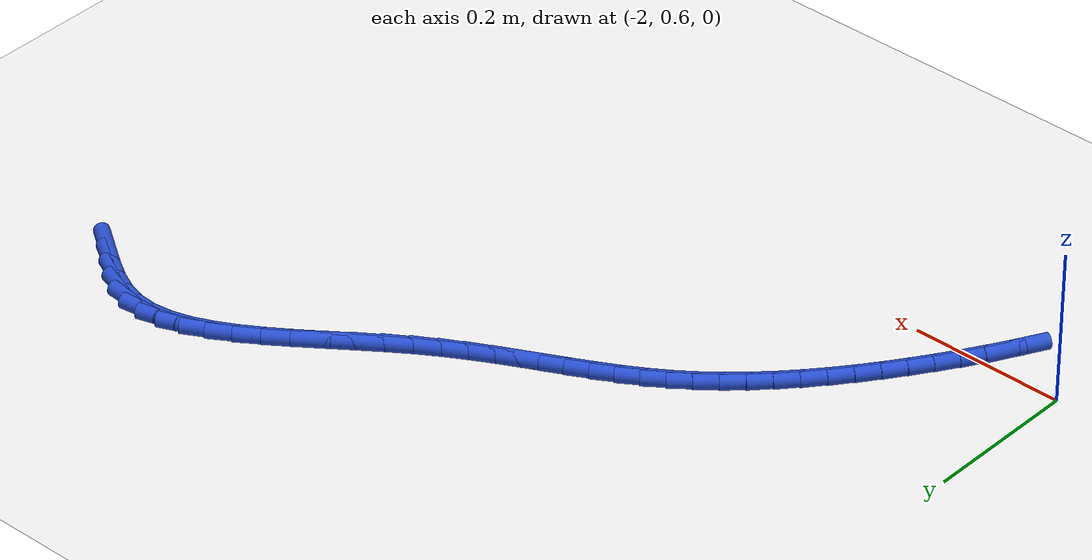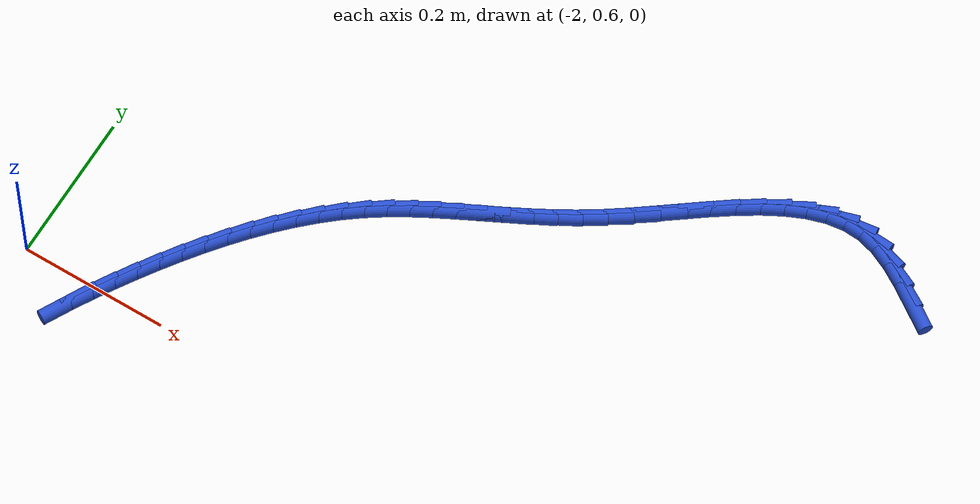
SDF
<sdf version="1.6">
 <world name="default">
  <model name="ground_plane">
   <static>1</static>
   <link name="link">
    <collision name="collision">
     <geometry><plane><normal>0 0 1</normal><size>100 100</size></plane></geometry>
     <surface><friction><ode><mu>100</mu><mu2>50</mu2></ode></friction></surface>
    </collision>
    <visual name="visual">
     <cast_shadows>0</cast_shadows>
     <geometry><plane><normal>0 0 1</normal><size>100 100</size></plane></geometry>
     <material>
      <script><uri>file://media/materials/scripts/gazebo.material</uri><name>Gazebo/WhiteGlow</name></script>
     </material>
    </visual>
   </link>
  </model>
  <model name="line">
   <link name="link_56">
    <pose>-1.0130125611857852 1.112921044099273 0.01 0 1.57 -0.6026807748835207</pose>
    <collision name="collision">
     <geometry><cylinder><radius>0.01</radius><length>0.08</length></cylinder></geometry>
    </collision>
    <visual name="visual">
     <material>
      <script><name>Gazebo/Blue</name><uri>file://media/materials/scripts/gazebo.material</uri></script>
     </material>
     <geometry><cylinder><radius>0.01</radius><length>0.08</length></cylinder></geometry>
    </visual>
   </link>
   <link name="link_57">
    <pose>-1.0380992990746158 1.1301827152183828 0.01 0 1.57 -0.5471766713011936</pose>
    <collision name="collision">
     <geometry><cylinder><radius>0.01</radius><length>0.08</length></cylinder></geometry>
    </collision>
    <visual name="visual">
     <material>
      <script><name>Gazebo/Blue</name><uri>file://media/materials/scripts/gazebo.material</uri></script>
     </material>
     <geometry><cylinder><radius>0.01</radius><length>0.08</length></cylinder></geometry>
    </visual>
   </link>
   <link name="link_58">
    <pose>-1.0628322930245138 1.1452507304255004 0.01 0 1.57 -0.4424146933022829</pose>
    <collision name="collision">
     <geometry><cylinder><radius>0.01</radius><length>0.08</length></cylinder></geometry>
    </collision>
    <visual name="visual">
     <material>
      <script><name>Gazebo/Blue</name><uri>file://media/materials/scripts/gazebo.material</uri></script>
     </material>
     <geometry><cylinder><radius>0.01</radius><length>0.08</length></cylinder></geometry>
    </visual>
   </link>
   <link name="link_59">
    <pose>-1.0874749070498286 1.1569247686831123 0.01 0 1.57 -0.277911214962415</pose>
    <collision name="collision">
     <geometry><cylinder><radius>0.01</radius><length>0.08</length></cylinder></geometry>
    </collision>
    <visual name="visual">
     <material>
      <script><name>Gazebo/Blue</name><uri>file://media/materials/scripts/gazebo.material</uri></script>
     </material>
     <geometry><cylinder><radius>0.01</radius><length>0.08</length></cylinder></geometry>
    </visual>
   </link>
   <link name="link_60">
    <pose>-1.1122905043282565 1.1640045141240842 0.01 0 1.57 -0.06423694749596144</pose>
    <collision name="collision">
     <geometry><cylinder><radius>0.01</radius><length>0.08</length></cylinder></geometry>
    </collision>
    <visual name="visual">
     <material>
      <script><name>Gazebo/Blue</name><uri>file://media/materials/scripts/gazebo.material</uri></script>
     </material>
     <geometry><cylinder><radius>0.01</radius><length>0.08</length></cylinder></geometry>
    </visual>
   </link>
   <link name="link_61">
    <pose>-1.1374881243011514 1.1656253623436648 0.01 0 1.57 0.13435719527198273</pose>
    <collision name="collision">
     <geometry><cylinder><radius>0.01</radius><length>0.08</length></cylinder></geometry>
    </collision>
    <visual name="visual">
     <material>
      <script><name>Gazebo/Blue</name><uri>file://media/materials/scripts/gazebo.material</uri></script>
     </material>
     <geometry><cylinder><radius>0.01</radius><length>0.08</length></cylinder></geometry>
    </visual>
   </link>
   <link name="link_62">
    <pose>-1.1630755117503349 1.162166675738191 0.01 0 1.57 0.29461252777238905</pose>
    <collision name="collision">
     <geometry><cylinder><radius>0.01</radius><length>0.08</length></cylinder></geometry>
    </collision>
    <visual name="visual">
     <material>
      <script><name>Gazebo/Blue</name><uri>file://media/materials/scripts/gazebo.material</uri></script>
     </material>
     <geometry><cylinder><radius>0.01</radius><length>0.08</length></cylinder></geometry>
    </visual>
   </link>
   <link name="link_63">
    <pose>-1.1890137973425283 1.1542958840167838 0.01 0 1.57 0.41658998567926514</pose>
    <collision name="collision">
     <geometry><cylinder><radius>0.01</radius><length>0.08</length></cylinder></geometry>
    </collision>
    <visual name="visual">
     <material>
      <script><name>Gazebo/Blue</name><uri>file://media/materials/scripts/gazebo.material</uri></script>
     </material>
     <geometry><cylinder><radius>0.01</radius><length>0.08</length></cylinder></geometry>
    </visual>
   </link>
   <link name="link_64">
    <pose>-1.2152641117444507 1.1426804168885643 0.01 0 1.57 0.50587177587055</pose>
    <collision name="collision">
     <geometry><cylinder><radius>0.01</radius><length>0.08</length></cylinder></geometry>
    </collision>
    <visual name="visual">
     <material>
      <script><name>Gazebo/Blue</name><uri>file://media/materials/scripts/gazebo.material</uri></script>
     </material>
     <geometry><cylinder><radius>0.01</radius><length>0.08</length></cylinder></geometry>
    </visual>
   </link>
   <link name="link_65">
    <pose>-1.2417875856228229 1.127987704062653 0.01 0 1.57 0.5687180148806973</pose>
    <collision name="collision">
     <geometry><cylinder><radius>0.01</radius><length>0.08</length></cylinder></geometry>
    </collision>
    <visual name="visual">
     <material>
      <script><name>Gazebo/Blue</name><uri>file://media/materials/scripts/gazebo.material</uri></script>
     </material>
     <geometry><cylinder><radius>0.01</radius><length>0.08</length></cylinder></geometry>
    </visual>
   </link>
   <link name="link_66">
    <pose>-1.2685453496443655 1.1108851752481694 0.01 0 1.57 0.6101701169862074</pose>
    <collision name="collision">
     <geometry><cylinder><radius>0.01</radius><length>0.08</length></cylinder></geometry>
    </collision>
    <visual name="visual">
     <material>
      <script><name>Gazebo/Blue</name><uri>file://media/materials/scripts/gazebo.material</uri></script>
     </material>
     <geometry><cylinder><radius>0.01</radius><length>0.08</length></cylinder></geometry>
    </visual>
   </link>
   <link name="link_67">
    <pose>-1.2954985344757983 1.092040260154236 0.01 0 1.57 0.6336932402444928</pose>
    <collision name="collision">
     <geometry><cylinder><radius>0.01</radius><length>0.08</length></cylinder></geometry>
    </collision>
    <visual name="visual">
     <material>
      <script><name>Gazebo/Blue</name><uri>file://media/materials/scripts/gazebo.material</uri></script>
     </material>
     <geometry><cylinder><radius>0.01</radius><length>0.08</length></cylinder></geometry>
    </visual>
   </link>
   <link name="link_68">
    <pose>-1.3226082707838416 1.072120388489972 0.01 0 1.57 0.6413075920823428</pose>
    <collision name="collision">
     <geometry><cylinder><radius>0.01</radius><length>0.08</length></cylinder></geometry>
    </collision>
    <visual name="visual">
     <material>
      <script><name>Gazebo/Blue</name><uri>file://media/materials/scripts/gazebo.material</uri></script>
     </material>
     <geometry><cylinder><radius>0.01</radius><length>0.08</length></cylinder></geometry>
    </visual>
   </link>
   <link name="link_69">
    <pose>-1.3498356892352157 1.051792989964499 0.01 0 1.57 0.6337703396347857</pose>
    <collision name="collision">
     <geometry><cylinder><radius>0.01</radius><length>0.08</length></cylinder></geometry>
    </collision>
    <visual name="visual">
     <material>
      <script><name>Gazebo/Blue</name><uri>file://media/materials/scripts/gazebo.material</uri></script>
     </material>
     <geometry><cylinder><radius>0.01</radius><length>0.08</length></cylinder></geometry>
    </visual>
   </link>
   <link name="link_70">
    <pose>-1.3771419204966413 1.0317254942869376 0.01 0 1.57 0.6106729705522095</pose>
    <collision name="collision">
     <geometry><cylinder><radius>0.01</radius><length>0.08</length></cylinder></geometry>
    </collision>
    <visual name="visual">
     <material>
      <script><name>Gazebo/Blue</name><uri>file://media/materials/scripts/gazebo.material</uri></script>
     </material>
     <geometry><cylinder><radius>0.01</radius><length>0.08</length></cylinder></geometry>
    </visual>
   </link>
   <link name="link_71">
    <pose>-1.4044880952348378 1.012585331166408 0.01 0 1.57 0.5722773821937713</pose>
    <collision name="collision">
     <geometry><cylinder><radius>0.01</radius><length>0.08</length></cylinder></geometry>
    </collision>
    <visual name="visual">
     <material>
      <script><name>Gazebo/Blue</name><uri>file://media/materials/scripts/gazebo.material</uri></script>
     </material>
     <geometry><cylinder><radius>0.01</radius><length>0.08</length></cylinder></geometry>
    </visual>
   </link>
   <link name="link_72">
    <pose>-1.4318325739889906 0.9949703931810553 0.01 0 1.57 0.5333577577702205</pose>
    <collision name="collision">
     <geometry><cylinder><radius>0.01</radius><length>0.08</length></cylinder></geometry>
    </collision>
    <visual name="visual">
     <material>
      <script><name>Gazebo/Blue</name><uri>file://media/materials/scripts/gazebo.material</uri></script>
     </material>
     <geometry><cylinder><radius>0.01</radius><length>0.08</length></cylinder></geometry>
    </visual>
   </link>
   <link name="link_73">
    <pose>-1.4591092838022588 0.9788652310351369 0.01 0 1.57 0.5030845978340784</pose>
    <collision name="collision">
     <geometry><cylinder><radius>0.01</radius><length>0.08</length></cylinder></geometry>
    </collision>
    <visual name="visual">
     <material>
      <script><name>Gazebo/Blue</name><uri>file://media/materials/scripts/gazebo.material</uri></script>
     </material>
     <geometry><cylinder><radius>0.01</radius><length>0.08</length></cylinder></geometry>
    </visual>
   </link>
   <link name="link_74">
    <pose>-1.4862394327720045 0.9639351180753087 0.01 0 1.57 0.48250172253777673</pose>
    <collision name="collision">
     <geometry><cylinder><radius>0.01</radius><length>0.08</length></cylinder></geometry>
    </collision>
    <visual name="visual">
     <material>
      <script><name>Gazebo/Blue</name><uri>file://media/materials/scripts/gazebo.material</uri></script>
     </material>
     <geometry><cylinder><radius>0.01</radius><length>0.08</length></cylinder></geometry>
    </visual>
   </link>
   <link name="link_75">
    <pose>-1.5131441196825068 0.949842583616363 0.01 0 1.57 0.47239873685205186</pose>
    <collision name="collision">
     <geometry><cylinder><radius>0.01</radius><length>0.08</length></cylinder></geometry>
    </collision>
    <visual name="visual">
     <material>
      <script><name>Gazebo/Blue</name><uri>file://media/materials/scripts/gazebo.material</uri></script>
     </material>
     <geometry><cylinder><radius>0.01</radius><length>0.08</length></cylinder></geometry>
    </visual>
   </link>
   <link name="link_76">
    <pose>-1.5397444433180438 0.9362501569730904 0.01 0 1.57 0.47340256465893343</pose>
    <collision name="collision">
     <geometry><cylinder><radius>0.01</radius><length>0.08</length></cylinder></geometry>
    </collision>
    <visual name="visual">
     <material>
      <script><name>Gazebo/Blue</name><uri>file://media/materials/scripts/gazebo.material</uri></script>
     </material>
     <geometry><cylinder><radius>0.01</radius><length>0.08</length></cylinder></geometry>
    </visual>
   </link>
   <link name="link_77">
    <pose>-1.5659615024628957 0.9228203674602823 0.01 0 1.57 0.48597923923651015</pose>
    <collision name="collision">
     <geometry><cylinder><radius>0.01</radius><length>0.08</length></cylinder></geometry>
    </collision>
    <visual name="visual">
     <material>
      <script><name>Gazebo/Blue</name><uri>file://media/materials/scripts/gazebo.material</uri></script>
     </material>
     <geometry><cylinder><radius>0.01</radius><length>0.08</length></cylinder></geometry>
    </visual>
   </link>
   <link name="link_78">
    <pose>-1.5917163959013403 0.9092157443927307 0.01 0 1.57 0.5104033098201278</pose>
    <collision name="collision">
     <geometry><cylinder><radius>0.01</radius><length>0.08</length></cylinder></geometry>
    </collision>
    <visual name="visual">
     <material>
      <script><name>Gazebo/Blue</name><uri>file://media/materials/scripts/gazebo.material</uri></script>
     </material>
     <geometry><cylinder><radius>0.01</radius><length>0.08</length></cylinder></geometry>
    </visual>
   </link>
   <link name="link_79">
    <pose>-1.6169302224176572 0.8950988170852263 0.01 0 1.57 0.5466858136549194</pose>
    <collision name="collision">
     <geometry><cylinder><radius>0.01</radius><length>0.08</length></cylinder></geometry>
    </collision>
    <visual name="visual">
     <material>
      <script><name>Gazebo/Blue</name><uri>file://media/materials/scripts/gazebo.material</uri></script>
     </material>
     <geometry><cylinder><radius>0.01</radius><length>0.08</length></cylinder></geometry>
    </visual>
   </link>
   <link name="link_80">
    <pose>-1.6415240807961249 0.8801321148525612 0.01 0 1.57 0.594463185610515</pose>
    <collision name="collision">
     <geometry><cylinder><radius>0.01</radius><length>0.08</length></cylinder></geometry>
    </collision>
    <visual name="visual">
     <material>
      <script><name>Gazebo/Blue</name><uri>file://media/materials/scripts/gazebo.material</uri></script>
     </material>
     <geometry><cylinder><radius>0.01</radius><length>0.08</length></cylinder></geometry>
    </visual>
   </link>
   <link name="link_81">
    <pose>-1.6654190699268598 0.8639781675097016 0.01 0 1.57 0.6502751121791469</pose>
    <collision name="collision">
     <geometry><cylinder><radius>0.01</radius><length>0.08</length></cylinder></geometry>
    </collision>
    <visual name="visual">
     <material>
      <script><name>Gazebo/Blue</name><uri>file://media/materials/scripts/gazebo.material</uri></script>
     </material>
     <geometry><cylinder><radius>0.01</radius><length>0.08</length></cylinder></geometry>
    </visual>
   </link>
   <link name="link_82">
    <pose>-1.6885535699334802 0.8463811739885229 0.01 0 1.57 0.7036068048650892</pose>
    <collision name="collision">
     <geometry><cylinder><radius>0.01</radius><length>0.08</length></cylinder></geometry>
    </collision>
    <visual name="visual">
     <material>
      <script><name>Gazebo/Blue</name><uri>file://media/materials/scripts/gazebo.material</uri></script>
     </material>
     <geometry><cylinder><radius>0.01</radius><length>0.08</length></cylinder></geometry>
    </visual>
   </link>
   <link name="link_83">
    <pose>-1.7109313286242787 0.8273942533614131 0.01 0 1.57 0.7522403757640631</pose>
    <collision name="collision">
     <geometry><cylinder><radius>0.01</radius><length>0.08</length></cylinder></geometry>
    </collision>
    <visual name="visual">
     <material>
      <script><name>Gazebo/Blue</name><uri>file://media/materials/scripts/gazebo.material</uri></script>
     </material>
     <geometry><cylinder><radius>0.01</radius><length>0.08</length></cylinder></geometry>
    </visual>
   </link>
   <link name="link_84">
    <pose>-1.7325715469449157 0.8071435544461341 0.01 0 1.57 0.7964222311930087</pose>
    <collision name="collision">
     <geometry><cylinder><radius>0.01</radius><length>0.08</length></cylinder></geometry>
    </collision>
    <visual name="visual">
     <material>
      <script><name>Gazebo/Blue</name><uri>file://media/materials/scripts/gazebo.material</uri></script>
     </material>
     <geometry><cylinder><radius>0.01</radius><length>0.08</length></cylinder></geometry>
    </visual>
   </link>
   <link name="link_85">
    <pose>-1.753493425841053 0.7857552260604447 0.01 0 1.57 0.8364316731445736</pose>
    <collision name="collision">
     <geometry><cylinder><radius>0.01</radius><length>0.08</length></cylinder></geometry>
    </collision>
    <visual name="visual">
     <material>
      <script><name>Gazebo/Blue</name><uri>file://media/materials/scripts/gazebo.material</uri></script>
     </material>
     <geometry><cylinder><radius>0.01</radius><length>0.08</length></cylinder></geometry>
    </visual>
   </link>
   <link name="link_86">
    <pose>-1.7737161662583507 0.7633554170221053 0.01 0 1.57 0.8725575344978284</pose>
    <collision name="collision">
     <geometry><cylinder><radius>0.01</radius><length>0.08</length></cylinder></geometry>
    </collision>
    <visual name="visual">
     <material>
      <script><name>Gazebo/Blue</name><uri>file://media/materials/scripts/gazebo.material</uri></script>
     </material>
     <geometry><cylinder><radius>0.01</radius><length>0.08</length></cylinder></geometry>
    </visual>
   </link>
   <link name="link_87">
    <pose>-1.7932589691424714 0.7400702761488768 0.01 0 1.57 0.905081781154588</pose>
    <collision name="collision">
     <geometry><cylinder><radius>0.01</radius><length>0.08</length></cylinder></geometry>
    </collision>
    <visual name="visual">
     <material>
      <script><name>Gazebo/Blue</name><uri>file://media/materials/scripts/gazebo.material</uri></script>
     </material>
     <geometry><cylinder><radius>0.01</radius><length>0.08</length></cylinder></geometry>
    </visual>
   </link>
   <link name="link_88">
    <pose>-1.8121410354390746 0.7160259522585176 0.01 0 1.57 0.9342686075856524</pose>
    <collision name="collision">
     <geometry><cylinder><radius>0.01</radius><length>0.08</length></cylinder></geometry>
    </collision>
    <visual name="visual">
     <material>
      <script><name>Gazebo/Blue</name><uri>file://media/materials/scripts/gazebo.material</uri></script>
     </material>
     <geometry><cylinder><radius>0.01</radius><length>0.08</length></cylinder></geometry>
    </visual>
   </link>
   <link name="link_89">
    <pose>-1.8303815660938207 0.6913485941687891 0.01 0 1.57 0.9603575515905419</pose>
    <collision name="collision">
     <geometry><cylinder><radius>0.01</radius><length>0.08</length></cylinder></geometry>
    </collision>
    <visual name="visual">
     <material>
      <script><name>Gazebo/Blue</name><uri>file://media/materials/scripts/gazebo.material</uri></script>
     </material>
     <geometry><cylinder><radius>0.01</radius><length>0.08</length></cylinder></geometry>
    </visual>
   </link>
   <link name="link_90">
    <pose>-1.8479997620523725 0.6661643506974508 0.01 0 1.57 0.983559344203396</pose>
    <collision name="collision">
     <geometry><cylinder><radius>0.01</radius><length>0.08</length></cylinder></geometry>
    </collision>
    <visual name="visual">
     <material>
      <script><name>Gazebo/Blue</name><uri>file://media/materials/scripts/gazebo.material</uri></script>
     </material>
     <geometry><cylinder><radius>0.01</radius><length>0.08</length></cylinder></geometry>
    </visual>
   </link>
   <link name="link_91">
    <pose>-1.8650148242603897 0.6405993706622632 0.01 0 1.57 1.0045604497670437</pose>
    <collision name="collision">
     <geometry><cylinder><radius>0.01</radius><length>0.08</length></cylinder></geometry>
    </collision>
    <visual name="visual">
     <material>
      <script><name>Gazebo/Blue</name><uri>file://media/materials/scripts/gazebo.material</uri></script>
     </material>
     <geometry><cylinder><radius>0.01</radius><length>0.08</length></cylinder></geometry>
    </visual>
   </link>
   <link name="link_92">
    <pose>-1.8814357794142322 0.6147668848210658 0.01 0 1.57 1.0267886334586147</pose>
    <collision name="collision">
     <geometry><cylinder><radius>0.01</radius><length>0.08</length></cylinder></geometry>
    </collision>
    <visual name="visual">
     <material>
      <script><name>Gazebo/Blue</name><uri>file://media/materials/scripts/gazebo.material</uri></script>
     </material>
     <geometry><cylinder><radius>0.01</radius><length>0.08</length></cylinder></geometry>
    </visual>
   </link>
   <link name="link_93">
    <pose>-1.8972056310284933 0.5886962954945485 0.01 0 1.57 1.0516631643535972</pose>
    <collision name="collision">
     <geometry><cylinder><radius>0.01</radius><length>0.08</length></cylinder></geometry>
    </collision>
    <visual name="visual">
     <material>
      <script><name>Gazebo/Blue</name><uri>file://media/materials/scripts/gazebo.material</uri></script>
     </material>
     <geometry><cylinder><radius>0.01</radius><length>0.08</length></cylinder></geometry>
    </visual>
   </link>
   <link name="link_94">
    <pose>-1.9122410335105682 0.562383550019593 0.01 0 1.57 1.0792949407224857</pose>
    <collision name="collision">
     <geometry><cylinder><radius>0.01</radius><length>0.08</length></cylinder></geometry>
    </collision>
    <visual name="visual">
     <material>
      <script><name>Gazebo/Blue</name><uri>file://media/materials/scripts/gazebo.material</uri></script>
     </material>
     <geometry><cylinder><radius>0.01</radius><length>0.08</length></cylinder></geometry>
    </visual>
   </link>
  </model>
 </world>
</sdf>
